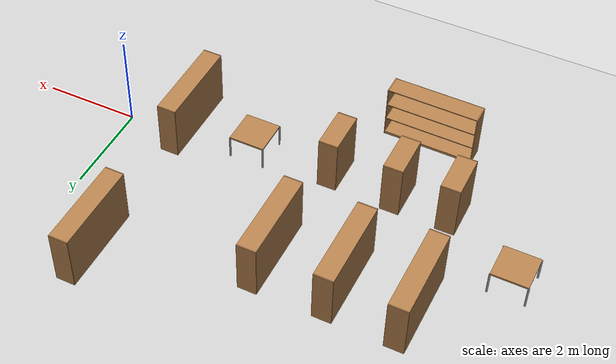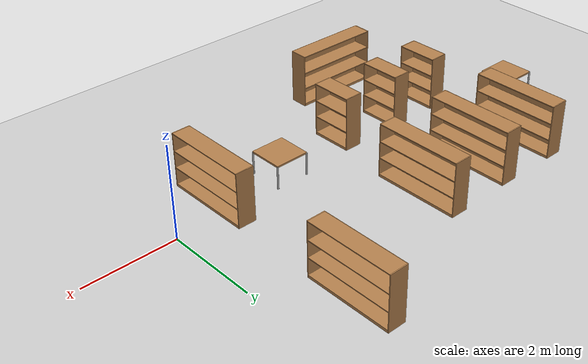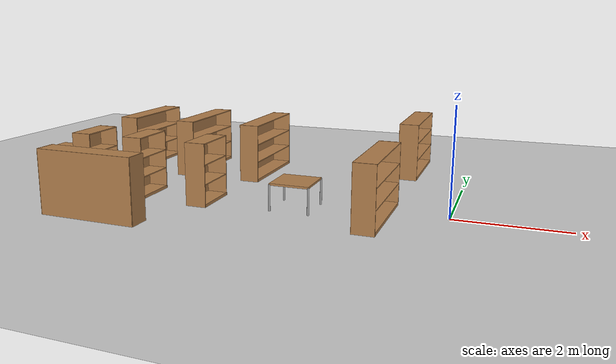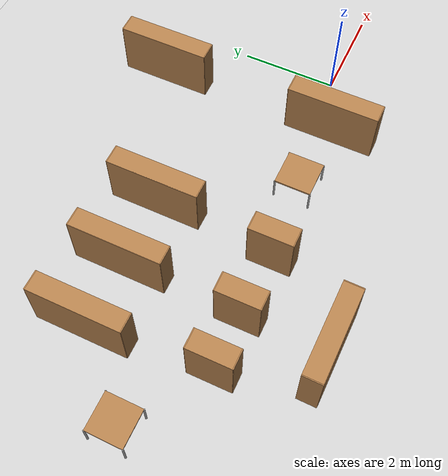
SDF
<sdf version="1.6">
 <world name="default">
  <model name="ground_plane">
   <static>1</static>
   <link name="link">
    <collision name="collision">
     <geometry><plane><normal>0 0 1</normal><size>100 100</size></plane></geometry>
     <surface><friction><ode><mu>100</mu><mu2>50</mu2></ode></friction></surface>
    </collision>
    <visual name="visual">
     <cast_shadows>0</cast_shadows>
     <geometry><plane><normal>0 0 1</normal><size>100 100</size></plane></geometry>
     <material>
      <script><uri>file://media/materials/scripts/gazebo.material</uri><name>Gazebo/Grey</name></script>
     </material>
    </visual>
   </link>
  </model>
  <model name="library_bookshelf_onesided_small">
   <static>1</static>
   <link name="link">
    <inertial><mass>1</mass></inertial>
    <collision name="back">
     <pose>0 0.005 0.6 0 -0 0</pose>
     <geometry><box><size>0.9 0.01 1.2</size></box></geometry>
    </collision>
    <visual name="visual1">
     <pose>0 0.005 0.6 0 -0 0</pose>
     <geometry><box><size>0.9 0.01 1.2</size></box></geometry>
     <material>
      <script><uri>file://media/materials/scripts/gazebo.material</uri><name>Gazebo/Wood</name></script>
     </material>
    </visual>
    <collision name="left_side">
     <pose>0.45 -0.195 0.6 0 -0 0</pose>
     <geometry><box><size>0.02 0.4 1.2</size></box></geometry>
    </collision>
    <visual name="visual2">
     <pose>0.45 -0.195 0.6 0 -0 0</pose>
     <geometry><box><size>0.02 0.4 1.2</size></box></geometry>
     <material>
      <script><uri>file://media/materials/scripts/gazebo.material</uri><name>Gazebo/Wood</name></script>
     </material>
    </visual>
    <collision name="right_side">
     <pose>-0.45 -0.195 0.6 0 -0 0</pose>
     <geometry><box><size>0.02 0.4 1.2</size></box></geometry>
    </collision>
    <visual name="visual3">
     <pose>-0.45 -0.195 0.6 0 -0 0</pose>
     <geometry><box><size>0.02 0.4 1.2</size></box></geometry>
     <material>
      <script><uri>file://media/materials/scripts/gazebo.material</uri><name>Gazebo/Wood</name></script>
     </material>
    </visual>
    <collision name="bottom">
     <pose>0 -0.195 0.03 0 -0 0</pose>
     <geometry><box><size>0.88 0.4 0.06</size></box></geometry>
    </collision>
    <visual name="visual4">
     <pose>0 -0.195 0.03 0 -0 0</pose>
     <geometry><box><size>0.88 0.4 0.06</size></box></geometry>
     <material>
      <script><uri>file://media/materials/scripts/gazebo.material</uri><name>Gazebo/Wood</name></script>
     </material>
    </visual>
    <collision name="top">
     <pose>0 -0.195 1.19 0 -0 0</pose>
     <geometry><box><size>0.88 0.4 0.02</size></box></geometry>
    </collision>
    <visual name="visual5">
     <pose>0 -0.195 1.19 0 -0 0</pose>
     <geometry><box><size>0.88 0.4 0.02</size></box></geometry>
     <material>
      <script><uri>file://media/materials/scripts/gazebo.material</uri><name>Gazebo/Wood</name></script>
     </material>
    </visual>
    <collision name="low_shelf">
     <pose>0 -0.195 0.43 0 -0 0</pose>
     <geometry><box><size>0.88 0.4 0.02</size></box></geometry>
    </collision>
    <visual name="visual6">
     <pose>0 -0.195 0.43 0 -0 0</pose>
     <geometry><box><size>0.88 0.4 0.02</size></box></geometry>
     <material>
      <script><uri>file://media/materials/scripts/gazebo.material</uri><name>Gazebo/Wood</name></script>
     </material>
    </visual>
    <collision name="high_shelf">
     <pose>0 -0.195 0.8 0 -0 0</pose>
     <geometry><box><size>0.88 0.4 0.02</size></box></geometry>
    </collision>
    <visual name="visual7">
     <pose>0 -0.195 0.8 0 -0 0</pose>
     <geometry><box><size>0.88 0.4 0.02</size></box></geometry>
     <material>
      <script><uri>file://media/materials/scripts/gazebo.material</uri><name>Gazebo/Wood</name></script>
     </material>
    </visual>
   </link>
   <pose>-7.19159 -0.498568 0 0 -0 1.57898</pose>
  </model>
  <model name="library_bookshelf_onesided_small_clone">
   <static>1</static>
   <link name="link">
    <inertial><mass>1</mass></inertial>
    <collision name="back">
     <pose>0 0.005 0.6 0 -0 0</pose>
     <geometry><box><size>0.9 0.01 1.2</size></box></geometry>
    </collision>
    <visual name="visual1">
     <pose>0 0.005 0.6 0 -0 0</pose>
     <geometry><box><size>0.9 0.01 1.2</size></box></geometry>
     <material>
      <script><uri>file://media/materials/scripts/gazebo.material</uri><name>Gazebo/Wood</name></script>
     </material>
    </visual>
    <collision name="left_side">
     <pose>0.45 -0.195 0.6 0 -0 0</pose>
     <geometry><box><size>0.02 0.4 1.2</size></box></geometry>
    </collision>
    <visual name="visual2">
     <pose>0.45 -0.195 0.6 0 -0 0</pose>
     <geometry><box><size>0.02 0.4 1.2</size></box></geometry>
     <material>
      <script><uri>file://media/materials/scripts/gazebo.material</uri><name>Gazebo/Wood</name></script>
     </material>
    </visual>
    <collision name="right_side">
     <pose>-0.45 -0.195 0.6 0 -0 0</pose>
     <geometry><box><size>0.02 0.4 1.2</size></box></geometry>
    </collision>
    <visual name="visual3">
     <pose>-0.45 -0.195 0.6 0 -0 0</pose>
     <geometry><box><size>0.02 0.4 1.2</size></box></geometry>
     <material>
      <script><uri>file://media/materials/scripts/gazebo.material</uri><name>Gazebo/Wood</name></script>
     </material>
    </visual>
    <collision name="bottom">
     <pose>0 -0.195 0.03 0 -0 0</pose>
     <geometry><box><size>0.88 0.4 0.06</size></box></geometry>
    </collision>
    <visual name="visual4">
     <pose>0 -0.195 0.03 0 -0 0</pose>
     <geometry><box><size>0.88 0.4 0.06</size></box></geometry>
     <material>
      <script><uri>file://media/materials/scripts/gazebo.material</uri><name>Gazebo/Wood</name></script>
     </material>
    </visual>
    <collision name="top">
     <pose>0 -0.195 1.19 0 -0 0</pose>
     <geometry><box><size>0.88 0.4 0.02</size></box></geometry>
    </collision>
    <visual name="visual5">
     <pose>0 -0.195 1.19 0 -0 0</pose>
     <geometry><box><size>0.88 0.4 0.02</size></box></geometry>
     <material>
      <script><uri>file://media/materials/scripts/gazebo.material</uri><name>Gazebo/Wood</name></script>
     </material>
    </visual>
    <collision name="low_shelf">
     <pose>0 -0.195 0.43 0 -0 0</pose>
     <geometry><box><size>0.88 0.4 0.02</size></box></geometry>
    </collision>
    <visual name="visual6">
     <pose>0 -0.195 0.43 0 -0 0</pose>
     <geometry><box><size>0.88 0.4 0.02</size></box></geometry>
     <material>
      <script><uri>file://media/materials/scripts/gazebo.material</uri><name>Gazebo/Wood</name></script>
     </material>
    </visual>
    <collision name="high_shelf">
     <pose>0 -0.195 0.8 0 -0 0</pose>
     <geometry><box><size>0.88 0.4 0.02</size></box></geometry>
    </collision>
    <visual name="visual7">
     <pose>0 -0.195 0.8 0 -0 0</pose>
     <geometry><box><size>0.88 0.4 0.02</size></box></geometry>
     <material>
      <script><uri>file://media/materials/scripts/gazebo.material</uri><name>Gazebo/Wood</name></script>
     </material>
    </visual>
   </link>
   <pose>-6.03469 -0.490584 0 0 -0 1.57898</pose>
  </model>
  <model name="library_bookshelf_onesided_small_clone_0">
   <static>1</static>
   <link name="link">
    <inertial><mass>1</mass></inertial>
    <collision name="back">
     <pose>0 0.005 0.6 0 -0 0</pose>
     <geometry><box><size>0.9 0.01 1.2</size></box></geometry>
    </collision>
    <visual name="visual1">
     <pose>0 0.005 0.6 0 -0 0</pose>
     <geometry><box><size>0.9 0.01 1.2</size></box></geometry>
     <material>
      <script><uri>file://media/materials/scripts/gazebo.material</uri><name>Gazebo/Wood</name></script>
     </material>
    </visual>
    <collision name="left_side">
     <pose>0.45 -0.195 0.6 0 -0 0</pose>
     <geometry><box><size>0.02 0.4 1.2</size></box></geometry>
    </collision>
    <visual name="visual2">
     <pose>0.45 -0.195 0.6 0 -0 0</pose>
     <geometry><box><size>0.02 0.4 1.2</size></box></geometry>
     <material>
      <script><uri>file://media/materials/scripts/gazebo.material</uri><name>Gazebo/Wood</name></script>
     </material>
    </visual>
    <collision name="right_side">
     <pose>-0.45 -0.195 0.6 0 -0 0</pose>
     <geometry><box><size>0.02 0.4 1.2</size></box></geometry>
    </collision>
    <visual name="visual3">
     <pose>-0.45 -0.195 0.6 0 -0 0</pose>
     <geometry><box><size>0.02 0.4 1.2</size></box></geometry>
     <material>
      <script><uri>file://media/materials/scripts/gazebo.material</uri><name>Gazebo/Wood</name></script>
     </material>
    </visual>
    <collision name="bottom">
     <pose>0 -0.195 0.03 0 -0 0</pose>
     <geometry><box><size>0.88 0.4 0.06</size></box></geometry>
    </collision>
    <visual name="visual4">
     <pose>0 -0.195 0.03 0 -0 0</pose>
     <geometry><box><size>0.88 0.4 0.06</size></box></geometry>
     <material>
      <script><uri>file://media/materials/scripts/gazebo.material</uri><name>Gazebo/Wood</name></script>
     </material>
    </visual>
    <collision name="top">
     <pose>0 -0.195 1.19 0 -0 0</pose>
     <geometry><box><size>0.88 0.4 0.02</size></box></geometry>
    </collision>
    <visual name="visual5">
     <pose>0 -0.195 1.19 0 -0 0</pose>
     <geometry><box><size>0.88 0.4 0.02</size></box></geometry>
     <material>
      <script><uri>file://media/materials/scripts/gazebo.material</uri><name>Gazebo/Wood</name></script>
     </material>
    </visual>
    <collision name="low_shelf">
     <pose>0 -0.195 0.43 0 -0 0</pose>
     <geometry><box><size>0.88 0.4 0.02</size></box></geometry>
    </collision>
    <visual name="visual6">
     <pose>0 -0.195 0.43 0 -0 0</pose>
     <geometry><box><size>0.88 0.4 0.02</size></box></geometry>
     <material>
      <script><uri>file://media/materials/scripts/gazebo.material</uri><name>Gazebo/Wood</name></script>
     </material>
    </visual>
    <collision name="high_shelf">
     <pose>0 -0.195 0.8 0 -0 0</pose>
     <geometry><box><size>0.88 0.4 0.02</size></box></geometry>
    </collision>
    <visual name="visual7">
     <pose>0 -0.195 0.8 0 -0 0</pose>
     <geometry><box><size>0.88 0.4 0.02</size></box></geometry>
     <material>
      <script><uri>file://media/materials/scripts/gazebo.material</uri><name>Gazebo/Wood</name></script>
     </material>
    </visual>
   </link>
   <pose>-4.66871 -0.520505 0 0 -0 1.57898</pose>
  </model>
  <model name="library_bookshelf_onesided">
   <static>1</static>
   <link name="link">
    <inertial><mass>1</mass></inertial>
    <collision name="back">
     <pose>0 0.005 0.6 0 -0 0</pose>
     <geometry><box><size>1.9 0.01 1.2</size></box></geometry>
    </collision>
    <visual name="back">
     <pose>0 0.005 0.6 0 -0 0</pose>
     <geometry><box><size>1.9 0.01 1.2</size></box></geometry>
     <material>
      <script><uri>file://media/materials/scripts/gazebo.material</uri><name>Gazebo/Wood</name></script>
     </material>
    </visual>
    <collision name="left_side">
     <pose>0.95 -0.195 0.6 0 -0 0</pose>
     <geometry><box><size>0.02 0.4 1.2</size></box></geometry>
    </collision>
    <visual name="left_side">
     <pose>0.95 -0.195 0.6 0 -0 0</pose>
     <geometry><box><size>0.02 0.4 1.2</size></box></geometry>
     <material>
      <script><uri>file://media/materials/scripts/gazebo.material</uri><name>Gazebo/Wood</name></script>
     </material>
    </visual>
    <collision name="right_side">
     <pose>-0.95 -0.195 0.6 0 -0 0</pose>
     <geometry><box><size>0.02 0.4 1.2</size></box></geometry>
    </collision>
    <visual name="right_side">
     <pose>-0.95 -0.195 0.6 0 -0 0</pose>
     <geometry><box><size>0.02 0.4 1.2</size></box></geometry>
     <material>
      <script><uri>file://media/materials/scripts/gazebo.material</uri><name>Gazebo/Wood</name></script>
     </material>
    </visual>
    <collision name="bottom">
     <pose>0 -0.195 0.03 0 -0 0</pose>
     <geometry><box><size>1.88 0.4 0.06</size></box></geometry>
    </collision>
    <visual name="bottom">
     <pose>0 -0.195 0.03 0 -0 0</pose>
     <geometry><box><size>1.88 0.4 0.06</size></box></geometry>
     <material>
      <script><uri>file://media/materials/scripts/gazebo.material</uri><name>Gazebo/Wood</name></script>
     </material>
    </visual>
    <collision name="top">
     <pose>0 -0.195 1.19 0 -0 0</pose>
     <geometry><box><size>1.88 0.4 0.02</size></box></geometry>
    </collision>
    <visual name="top">
     <pose>0 -0.195 1.19 0 -0 0</pose>
     <geometry><box><size>1.88 0.4 0.02</size></box></geometry>
     <material>
      <script><uri>file://media/materials/scripts/gazebo.material</uri><name>Gazebo/Wood</name></script>
     </material>
    </visual>
    <collision name="low_shelf">
     <pose>0 -0.195 0.43 0 -0 0</pose>
     <geometry><box><size>1.88 0.4 0.02</size></box></geometry>
    </collision>
    <visual name="low_shelf">
     <pose>0 -0.195 0.43 0 -0 0</pose>
     <geometry><box><size>1.88 0.4 0.02</size></box></geometry>
     <material>
      <script><uri>file://media/materials/scripts/gazebo.material</uri><name>Gazebo/Wood</name></script>
     </material>
    </visual>
    <collision name="high_shelf">
     <pose>0 -0.195 0.8 0 -0 0</pose>
     <geometry><box><size>1.88 0.4 0.02</size></box></geometry>
    </collision>
    <visual name="high_shelf">
     <pose>0 -0.195 0.8 0 -0 0</pose>
     <geometry><box><size>1.88 0.4 0.02</size></box></geometry>
     <material>
      <script><uri>file://media/materials/scripts/gazebo.material</uri><name>Gazebo/Wood</name></script>
     </material>
    </visual>
   </link>
   <pose>-5.84826 -2.39339 0 0 -0 3.13337</pose>
  </model>
  <model name="table">
   <static>1</static>
   <link name="link">
    <collision name="surface">
     <pose>0 0 0.5 0 -0 0</pose>
     <geometry><box><size>0.75 0.75 0.04</size></box></geometry>
    </collision>
    <visual name="visual1">
     <pose>0 0 0.5 0 -0 0</pose>
     <geometry><box><size>0.75 0.75 0.04</size></box></geometry>
     <material>
      <script><uri>file://media/materials/scripts/gazebo.material</uri><name>Gazebo/Wood</name></script>
     </material>
    </visual>
    <collision name="front_left_leg">
     <pose>0.37 0.37 0.25 0 -0 0</pose>
     <geometry><cylinder><radius>0.02</radius><length>0.5</length></cylinder></geometry>
    </collision>
    <visual name="front_left_leg">
     <pose>0.37 0.37 0.25 0 -0 0</pose>
     <geometry><cylinder><radius>0.02</radius><length>0.5</length></cylinder></geometry>
     <material>
      <script><uri>file://media/materials/scripts/gazebo.material</uri><name>Gazebo/Grey</name></script>
     </material>
    </visual>
    <collision name="front_right_leg">
     <pose>0.37 -0.37 0.25 0 -0 0</pose>
     <geometry><cylinder><radius>0.02</radius><length>0.5</length></cylinder></geometry>
    </collision>
    <visual name="front_right_leg">
     <pose>0.37 -0.37 0.25 0 -0 0</pose>
     <geometry><cylinder><radius>0.02</radius><length>0.5</length></cylinder></geometry>
     <material>
      <script><uri>file://media/materials/scripts/gazebo.material</uri><name>Gazebo/Grey</name></script>
     </material>
    </visual>
    <collision name="back_right_leg">
     <pose>-0.37 -0.37 0.25 0 -0 0</pose>
     <geometry><cylinder><radius>0.02</radius><length>0.5</length></cylinder></geometry>
    </collision>
    <visual name="back_right_leg">
     <pose>-0.37 -0.37 0.25 0 -0 0</pose>
     <geometry><cylinder><radius>0.02</radius><length>0.5</length></cylinder></geometry>
     <material>
      <script><uri>file://media/materials/scripts/gazebo.material</uri><name>Gazebo/Grey</name></script>
     </material>
    </visual>
    <collision name="back_left_leg">
     <pose>-0.37 0.37 0.25 0 -0 0</pose>
     <geometry><cylinder><radius>0.02</radius><length>0.5</length></cylinder></geometry>
    </collision>
    <visual name="back_left_leg">
     <pose>-0.37 0.37 0.25 0 -0 0</pose>
     <geometry><cylinder><radius>0.02</radius><length>0.5</length></cylinder></geometry>
     <material>
      <script><uri>file://media/materials/scripts/gazebo.material</uri><name>Gazebo/Grey</name></script>
     </material>
    </visual>
    <velocity_decay><linear>0</linear><angular>0</angular></velocity_decay>
   </link>
   <pose>-2.73764 -0.340906 0 0 -0 0</pose>
  </model>
  <model name="table_clone_1">
   <static>1</static>
   <link name="link">
    <collision name="surface">
     <pose>0 0 0.5 0 -0 0</pose>
     <geometry><box><size>0.75 0.75 0.04</size></box></geometry>
    </collision>
    <visual name="visual1">
     <pose>0 0 0.5 0 -0 0</pose>
     <geometry><box><size>0.75 0.75 0.04</size></box></geometry>
     <material>
      <script><uri>file://media/materials/scripts/gazebo.material</uri><name>Gazebo/Wood</name></script>
     </material>
    </visual>
    <collision name="front_left_leg">
     <pose>0.37 0.37 0.25 0 -0 0</pose>
     <geometry><cylinder><radius>0.02</radius><length>0.5</length></cylinder></geometry>
    </collision>
    <visual name="front_left_leg">
     <pose>0.37 0.37 0.25 0 -0 0</pose>
     <geometry><cylinder><radius>0.02</radius><length>0.5</length></cylinder></geometry>
     <material>
      <script><uri>file://media/materials/scripts/gazebo.material</uri><name>Gazebo/Grey</name></script>
     </material>
    </visual>
    <collision name="front_right_leg">
     <pose>0.37 -0.37 0.25 0 -0 0</pose>
     <geometry><cylinder><radius>0.02</radius><length>0.5</length></cylinder></geometry>
    </collision>
    <visual name="front_right_leg">
     <pose>0.37 -0.37 0.25 0 -0 0</pose>
     <geometry><cylinder><radius>0.02</radius><length>0.5</length></cylinder></geometry>
     <material>
      <script><uri>file://media/materials/scripts/gazebo.material</uri><name>Gazebo/Grey</name></script>
     </material>
    </visual>
    <collision name="back_right_leg">
     <pose>-0.37 -0.37 0.25 0 -0 0</pose>
     <geometry><cylinder><radius>0.02</radius><length>0.5</length></cylinder></geometry>
    </collision>
    <visual name="back_right_leg">
     <pose>-0.37 -0.37 0.25 0 -0 0</pose>
     <geometry><cylinder><radius>0.02</radius><length>0.5</length></cylinder></geometry>
     <material>
      <script><uri>file://media/materials/scripts/gazebo.material</uri><name>Gazebo/Grey</name></script>
     </material>
    </visual>
    <collision name="back_left_leg">
     <pose>-0.37 0.37 0.25 0 -0 0</pose>
     <geometry><cylinder><radius>0.02</radius><length>0.5</length></cylinder></geometry>
    </collision>
    <visual name="back_left_leg">
     <pose>-0.37 0.37 0.25 0 -0 0</pose>
     <geometry><cylinder><radius>0.02</radius><length>0.5</length></cylinder></geometry>
     <material>
      <script><uri>file://media/materials/scripts/gazebo.material</uri><name>Gazebo/Grey</name></script>
     </material>
    </visual>
    <velocity_decay><linear>0</linear><angular>0</angular></velocity_decay>
   </link>
   <pose>-8.6026 0.579128 0 0 -0 0</pose>
  </model>
  <model name="library_bookshelf_onesided_0_clone">
   <static>1</static>
   <link name="link">
    <inertial><mass>1</mass></inertial>
    <collision name="back">
     <pose>0 0.005 0.6 0 -0 0</pose>
     <geometry><box><size>1.9 0.01 1.2</size></box></geometry>
    </collision>
    <visual name="back">
     <pose>0 0.005 0.6 0 -0 0</pose>
     <geometry><box><size>1.9 0.01 1.2</size></box></geometry>
     <material>
      <script><uri>file://media/materials/scripts/gazebo.material</uri><name>Gazebo/Wood</name></script>
     </material>
    </visual>
    <collision name="left_side">
     <pose>0.95 -0.195 0.6 0 -0 0</pose>
     <geometry><box><size>0.02 0.4 1.2</size></box></geometry>
    </collision>
    <visual name="left_side">
     <pose>0.95 -0.195 0.6 0 -0 0</pose>
     <geometry><box><size>0.02 0.4 1.2</size></box></geometry>
     <material>
      <script><uri>file://media/materials/scripts/gazebo.material</uri><name>Gazebo/Wood</name></script>
     </material>
    </visual>
    <collision name="right_side">
     <pose>-0.95 -0.195 0.6 0 -0 0</pose>
     <geometry><box><size>0.02 0.4 1.2</size></box></geometry>
    </collision>
    <visual name="right_side">
     <pose>-0.95 -0.195 0.6 0 -0 0</pose>
     <geometry><box><size>0.02 0.4 1.2</size></box></geometry>
     <material>
      <script><uri>file://media/materials/scripts/gazebo.material</uri><name>Gazebo/Wood</name></script>
     </material>
    </visual>
    <collision name="bottom">
     <pose>0 -0.195 0.03 0 -0 0</pose>
     <geometry><box><size>1.88 0.4 0.06</size></box></geometry>
    </collision>
    <visual name="bottom">
     <pose>0 -0.195 0.03 0 -0 0</pose>
     <geometry><box><size>1.88 0.4 0.06</size></box></geometry>
     <material>
      <script><uri>file://media/materials/scripts/gazebo.material</uri><name>Gazebo/Wood</name></script>
     </material>
    </visual>
    <collision name="top">
     <pose>0 -0.195 1.19 0 -0 0</pose>
     <geometry><box><size>1.88 0.4 0.02</size></box></geometry>
    </collision>
    <visual name="top">
     <pose>0 -0.195 1.19 0 -0 0</pose>
     <geometry><box><size>1.88 0.4 0.02</size></box></geometry>
     <material>
      <script><uri>file://media/materials/scripts/gazebo.material</uri><name>Gazebo/Wood</name></script>
     </material>
    </visual>
    <collision name="low_shelf">
     <pose>0 -0.195 0.43 0 -0 0</pose>
     <geometry><box><size>1.88 0.4 0.02</size></box></geometry>
    </collision>
    <visual name="low_shelf">
     <pose>0 -0.195 0.43 0 -0 0</pose>
     <geometry><box><size>1.88 0.4 0.02</size></box></geometry>
     <material>
      <script><uri>file://media/materials/scripts/gazebo.material</uri><name>Gazebo/Wood</name></script>
     </material>
    </visual>
    <collision name="high_shelf">
     <pose>0 -0.195 0.8 0 -0 0</pose>
     <geometry><box><size>1.88 0.4 0.02</size></box></geometry>
    </collision>
    <visual name="high_shelf">
     <pose>0 -0.195 0.8 0 -0 0</pose>
     <geometry><box><size>1.88 0.4 0.02</size></box></geometry>
     <material>
      <script><uri>file://media/materials/scripts/gazebo.material</uri><name>Gazebo/Wood</name></script>
     </material>
    </visual>
   </link>
   <pose>-4.48812 2.00352 0 0 0.002317 1.57295</pose>
  </model>
  <model name="library_bookshelf_onesided_0_clone_3">
   <static>1</static>
   <link name="link">
    <inertial><mass>1</mass></inertial>
    <collision name="back">
     <pose>0 0.005 0.6 0 -0 0</pose>
     <geometry><box><size>1.9 0.01 1.2</size></box></geometry>
    </collision>
    <visual name="back">
     <pose>0 0.005 0.6 0 -0 0</pose>
     <geometry><box><size>1.9 0.01 1.2</size></box></geometry>
     <material>
      <script><uri>file://media/materials/scripts/gazebo.material</uri><name>Gazebo/Wood</name></script>
     </material>
    </visual>
    <collision name="left_side">
     <pose>0.95 -0.195 0.6 0 -0 0</pose>
     <geometry><box><size>0.02 0.4 1.2</size></box></geometry>
    </collision>
    <visual name="left_side">
     <pose>0.95 -0.195 0.6 0 -0 0</pose>
     <geometry><box><size>0.02 0.4 1.2</size></box></geometry>
     <material>
      <script><uri>file://media/materials/scripts/gazebo.material</uri><name>Gazebo/Wood</name></script>
     </material>
    </visual>
    <collision name="right_side">
     <pose>-0.95 -0.195 0.6 0 -0 0</pose>
     <geometry><box><size>0.02 0.4 1.2</size></box></geometry>
    </collision>
    <visual name="right_side">
     <pose>-0.95 -0.195 0.6 0 -0 0</pose>
     <geometry><box><size>0.02 0.4 1.2</size></box></geometry>
     <material>
      <script><uri>file://media/materials/scripts/gazebo.material</uri><name>Gazebo/Wood</name></script>
     </material>
    </visual>
    <collision name="bottom">
     <pose>0 -0.195 0.03 0 -0 0</pose>
     <geometry><box><size>1.88 0.4 0.06</size></box></geometry>
    </collision>
    <visual name="bottom">
     <pose>0 -0.195 0.03 0 -0 0</pose>
     <geometry><box><size>1.88 0.4 0.06</size></box></geometry>
     <material>
      <script><uri>file://media/materials/scripts/gazebo.material</uri><name>Gazebo/Wood</name></script>
     </material>
    </visual>
    <collision name="top">
     <pose>0 -0.195 1.19 0 -0 0</pose>
     <geometry><box><size>1.88 0.4 0.02</size></box></geometry>
    </collision>
    <visual name="top">
     <pose>0 -0.195 1.19 0 -0 0</pose>
     <geometry><box><size>1.88 0.4 0.02</size></box></geometry>
     <material>
      <script><uri>file://media/materials/scripts/gazebo.material</uri><name>Gazebo/Wood</name></script>
     </material>
    </visual>
    <collision name="low_shelf">
     <pose>0 -0.195 0.43 0 -0 0</pose>
     <geometry><box><size>1.88 0.4 0.02</size></box></geometry>
    </collision>
    <visual name="low_shelf">
     <pose>0 -0.195 0.43 0 -0 0</pose>
     <geometry><box><size>1.88 0.4 0.02</size></box></geometry>
     <material>
      <script><uri>file://media/materials/scripts/gazebo.material</uri><name>Gazebo/Wood</name></script>
     </material>
    </visual>
    <collision name="high_shelf">
     <pose>0 -0.195 0.8 0 -0 0</pose>
     <geometry><box><size>1.88 0.4 0.02</size></box></geometry>
    </collision>
    <visual name="high_shelf">
     <pose>0 -0.195 0.8 0 -0 0</pose>
     <geometry><box><size>1.88 0.4 0.02</size></box></geometry>
     <material>
      <script><uri>file://media/materials/scripts/gazebo.material</uri><name>Gazebo/Wood</name></script>
     </material>
    </visual>
   </link>
   <pose>-5.99337 1.97448 0 0 0.002317 1.57295</pose>
  </model>
  <model name="library_bookshelf_onesided_0_clone_5">
   <static>1</static>
   <link name="link">
    <inertial><mass>1</mass></inertial>
    <collision name="back">
     <pose>0 0.005 0.6 0 -0 0</pose>
     <geometry><box><size>1.9 0.01 1.2</size></box></geometry>
    </collision>
    <visual name="back">
     <pose>0 0.005 0.6 0 -0 0</pose>
     <geometry><box><size>1.9 0.01 1.2</size></box></geometry>
     <material>
      <script><uri>file://media/materials/scripts/gazebo.material</uri><name>Gazebo/Wood</name></script>
     </material>
    </visual>
    <collision name="left_side">
     <pose>0.95 -0.195 0.6 0 -0 0</pose>
     <geometry><box><size>0.02 0.4 1.2</size></box></geometry>
    </collision>
    <visual name="left_side">
     <pose>0.95 -0.195 0.6 0 -0 0</pose>
     <geometry><box><size>0.02 0.4 1.2</size></box></geometry>
     <material>
      <script><uri>file://media/materials/scripts/gazebo.material</uri><name>Gazebo/Wood</name></script>
     </material>
    </visual>
    <collision name="right_side">
     <pose>-0.95 -0.195 0.6 0 -0 0</pose>
     <geometry><box><size>0.02 0.4 1.2</size></box></geometry>
    </collision>
    <visual name="right_side">
     <pose>-0.95 -0.195 0.6 0 -0 0</pose>
     <geometry><box><size>0.02 0.4 1.2</size></box></geometry>
     <material>
      <script><uri>file://media/materials/scripts/gazebo.material</uri><name>Gazebo/Wood</name></script>
     </material>
    </visual>
    <collision name="bottom">
     <pose>0 -0.195 0.03 0 -0 0</pose>
     <geometry><box><size>1.88 0.4 0.06</size></box></geometry>
    </collision>
    <visual name="bottom">
     <pose>0 -0.195 0.03 0 -0 0</pose>
     <geometry><box><size>1.88 0.4 0.06</size></box></geometry>
     <material>
      <script><uri>file://media/materials/scripts/gazebo.material</uri><name>Gazebo/Wood</name></script>
     </material>
    </visual>
    <collision name="top">
     <pose>0 -0.195 1.19 0 -0 0</pose>
     <geometry><box><size>1.88 0.4 0.02</size></box></geometry>
    </collision>
    <visual name="top">
     <pose>0 -0.195 1.19 0 -0 0</pose>
     <geometry><box><size>1.88 0.4 0.02</size></box></geometry>
     <material>
      <script><uri>file://media/materials/scripts/gazebo.material</uri><name>Gazebo/Wood</name></script>
     </material>
    </visual>
    <collision name="low_shelf">
     <pose>0 -0.195 0.43 0 -0 0</pose>
     <geometry><box><size>1.88 0.4 0.02</size></box></geometry>
    </collision>
    <visual name="low_shelf">
     <pose>0 -0.195 0.43 0 -0 0</pose>
     <geometry><box><size>1.88 0.4 0.02</size></box></geometry>
     <material>
      <script><uri>file://media/materials/scripts/gazebo.material</uri><name>Gazebo/Wood</name></script>
     </material>
    </visual>
    <collision name="high_shelf">
     <pose>0 -0.195 0.8 0 -0 0</pose>
     <geometry><box><size>1.88 0.4 0.02</size></box></geometry>
    </collision>
    <visual name="high_shelf">
     <pose>0 -0.195 0.8 0 -0 0</pose>
     <geometry><box><size>1.88 0.4 0.02</size></box></geometry>
     <material>
      <script><uri>file://media/materials/scripts/gazebo.material</uri><name>Gazebo/Wood</name></script>
     </material>
    </visual>
   </link>
   <pose>-7.41555 1.98111 0 0 0.002317 1.57295</pose>
  </model>
  <model name="library_bookshelf_onesided_0_clone_7">
   <static>1</static>
   <link name="link">
    <inertial><mass>1</mass></inertial>
    <collision name="back">
     <pose>0 0.005 0.6 0 -0 0</pose>
     <geometry><box><size>1.9 0.01 1.2</size></box></geometry>
    </collision>
    <visual name="back">
     <pose>0 0.005 0.6 0 -0 0</pose>
     <geometry><box><size>1.9 0.01 1.2</size></box></geometry>
     <material>
      <script><uri>file://media/materials/scripts/gazebo.material</uri><name>Gazebo/Wood</name></script>
     </material>
    </visual>
    <collision name="left_side">
     <pose>0.95 -0.195 0.6 0 -0 0</pose>
     <geometry><box><size>0.02 0.4 1.2</size></box></geometry>
    </collision>
    <visual name="left_side">
     <pose>0.95 -0.195 0.6 0 -0 0</pose>
     <geometry><box><size>0.02 0.4 1.2</size></box></geometry>
     <material>
      <script><uri>file://media/materials/scripts/gazebo.material</uri><name>Gazebo/Wood</name></script>
     </material>
    </visual>
    <collision name="right_side">
     <pose>-0.95 -0.195 0.6 0 -0 0</pose>
     <geometry><box><size>0.02 0.4 1.2</size></box></geometry>
    </collision>
    <visual name="right_side">
     <pose>-0.95 -0.195 0.6 0 -0 0</pose>
     <geometry><box><size>0.02 0.4 1.2</size></box></geometry>
     <material>
      <script><uri>file://media/materials/scripts/gazebo.material</uri><name>Gazebo/Wood</name></script>
     </material>
    </visual>
    <collision name="bottom">
     <pose>0 -0.195 0.03 0 -0 0</pose>
     <geometry><box><size>1.88 0.4 0.06</size></box></geometry>
    </collision>
    <visual name="bottom">
     <pose>0 -0.195 0.03 0 -0 0</pose>
     <geometry><box><size>1.88 0.4 0.06</size></box></geometry>
     <material>
      <script><uri>file://media/materials/scripts/gazebo.material</uri><name>Gazebo/Wood</name></script>
     </material>
    </visual>
    <collision name="top">
     <pose>0 -0.195 1.19 0 -0 0</pose>
     <geometry><box><size>1.88 0.4 0.02</size></box></geometry>
    </collision>
    <visual name="top">
     <pose>0 -0.195 1.19 0 -0 0</pose>
     <geometry><box><size>1.88 0.4 0.02</size></box></geometry>
     <material>
      <script><uri>file://media/materials/scripts/gazebo.material</uri><name>Gazebo/Wood</name></script>
     </material>
    </visual>
    <collision name="low_shelf">
     <pose>0 -0.195 0.43 0 -0 0</pose>
     <geometry><box><size>1.88 0.4 0.02</size></box></geometry>
    </collision>
    <visual name="low_shelf">
     <pose>0 -0.195 0.43 0 -0 0</pose>
     <geometry><box><size>1.88 0.4 0.02</size></box></geometry>
     <material>
      <script><uri>file://media/materials/scripts/gazebo.material</uri><name>Gazebo/Wood</name></script>
     </material>
    </visual>
    <collision name="high_shelf">
     <pose>0 -0.195 0.8 0 -0 0</pose>
     <geometry><box><size>1.88 0.4 0.02</size></box></geometry>
    </collision>
    <visual name="high_shelf">
     <pose>0 -0.195 0.8 0 -0 0</pose>
     <geometry><box><size>1.88 0.4 0.02</size></box></geometry>
     <material>
      <script><uri>file://media/materials/scripts/gazebo.material</uri><name>Gazebo/Wood</name></script>
     </material>
    </visual>
   </link>
   <pose>-1.40017 -0.440967 0 0 0.002317 1.57295</pose>
  </model>
  <model name="library_bookshelf_onesided_0_clone_8">
   <static>1</static>
   <link name="link">
    <inertial><mass>1</mass></inertial>
    <collision name="back">
     <pose>0 0.005 0.6 0 -0 0</pose>
     <geometry><box><size>1.9 0.01 1.2</size></box></geometry>
    </collision>
    <visual name="back">
     <pose>0 0.005 0.6 0 -0 0</pose>
     <geometry><box><size>1.9 0.01 1.2</size></box></geometry>
     <material>
      <script><uri>file://media/materials/scripts/gazebo.material</uri><name>Gazebo/Wood</name></script>
     </material>
    </visual>
    <collision name="left_side">
     <pose>0.95 -0.195 0.6 0 -0 0</pose>
     <geometry><box><size>0.02 0.4 1.2</size></box></geometry>
    </collision>
    <visual name="left_side">
     <pose>0.95 -0.195 0.6 0 -0 0</pose>
     <geometry><box><size>0.02 0.4 1.2</size></box></geometry>
     <material>
      <script><uri>file://media/materials/scripts/gazebo.material</uri><name>Gazebo/Wood</name></script>
     </material>
    </visual>
    <collision name="right_side">
     <pose>-0.95 -0.195 0.6 0 -0 0</pose>
     <geometry><box><size>0.02 0.4 1.2</size></box></geometry>
    </collision>
    <visual name="right_side">
     <pose>-0.95 -0.195 0.6 0 -0 0</pose>
     <geometry><box><size>0.02 0.4 1.2</size></box></geometry>
     <material>
      <script><uri>file://media/materials/scripts/gazebo.material</uri><name>Gazebo/Wood</name></script>
     </material>
    </visual>
    <collision name="bottom">
     <pose>0 -0.195 0.03 0 -0 0</pose>
     <geometry><box><size>1.88 0.4 0.06</size></box></geometry>
    </collision>
    <visual name="bottom">
     <pose>0 -0.195 0.03 0 -0 0</pose>
     <geometry><box><size>1.88 0.4 0.06</size></box></geometry>
     <material>
      <script><uri>file://media/materials/scripts/gazebo.material</uri><name>Gazebo/Wood</name></script>
     </material>
    </visual>
    <collision name="top">
     <pose>0 -0.195 1.19 0 -0 0</pose>
     <geometry><box><size>1.88 0.4 0.02</size></box></geometry>
    </collision>
    <visual name="top">
     <pose>0 -0.195 1.19 0 -0 0</pose>
     <geometry><box><size>1.88 0.4 0.02</size></box></geometry>
     <material>
      <script><uri>file://media/materials/scripts/gazebo.material</uri><name>Gazebo/Wood</name></script>
     </material>
    </visual>
    <collision name="low_shelf">
     <pose>0 -0.195 0.43 0 -0 0</pose>
     <geometry><box><size>1.88 0.4 0.02</size></box></geometry>
    </collision>
    <visual name="low_shelf">
     <pose>0 -0.195 0.43 0 -0 0</pose>
     <geometry><box><size>1.88 0.4 0.02</size></box></geometry>
     <material>
      <script><uri>file://media/materials/scripts/gazebo.material</uri><name>Gazebo/Wood</name></script>
     </material>
    </visual>
    <collision name="high_shelf">
     <pose>0 -0.195 0.8 0 -0 0</pose>
     <geometry><box><size>1.88 0.4 0.02</size></box></geometry>
    </collision>
    <visual name="high_shelf">
     <pose>0 -0.195 0.8 0 -0 0</pose>
     <geometry><box><size>1.88 0.4 0.02</size></box></geometry>
     <material>
      <script><uri>file://media/materials/scripts/gazebo.material</uri><name>Gazebo/Wood</name></script>
     </material>
    </visual>
   </link>
   <pose>-1.3964 3.34952 0 0 0.002317 1.57295</pose>
  </model>
 </world>
</sdf>
